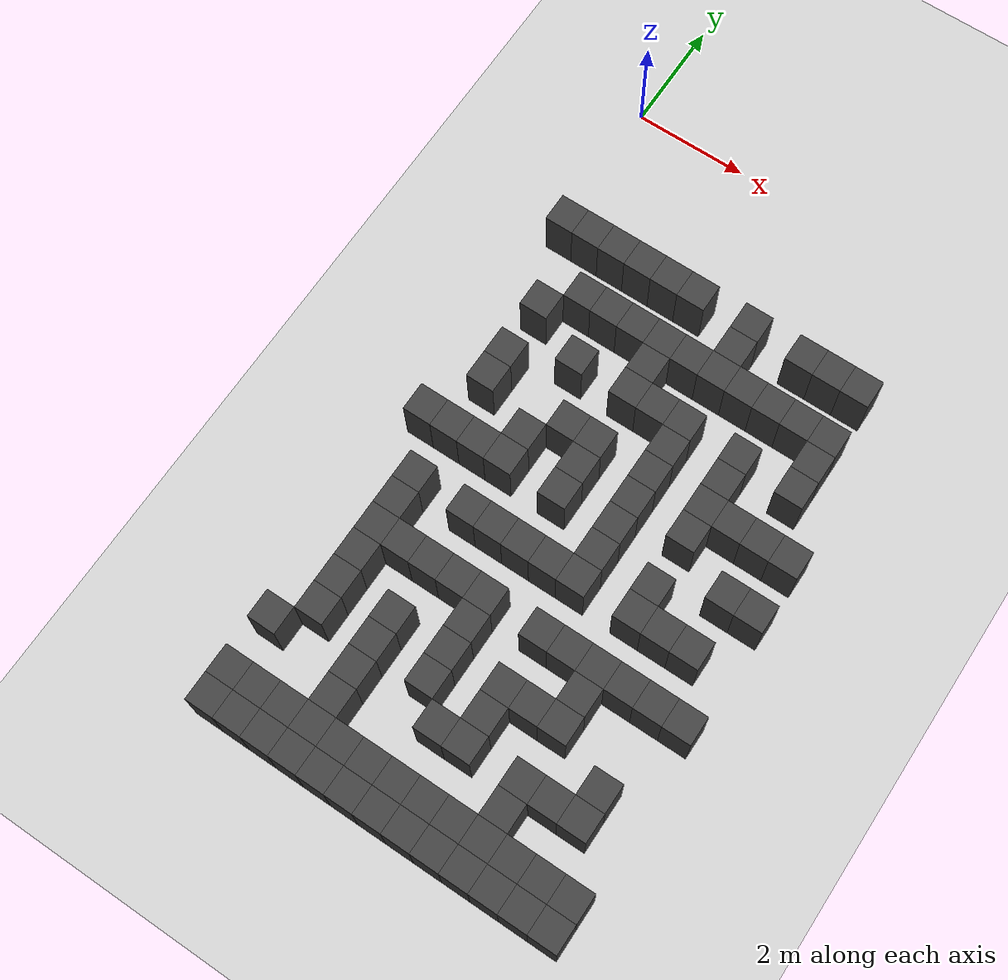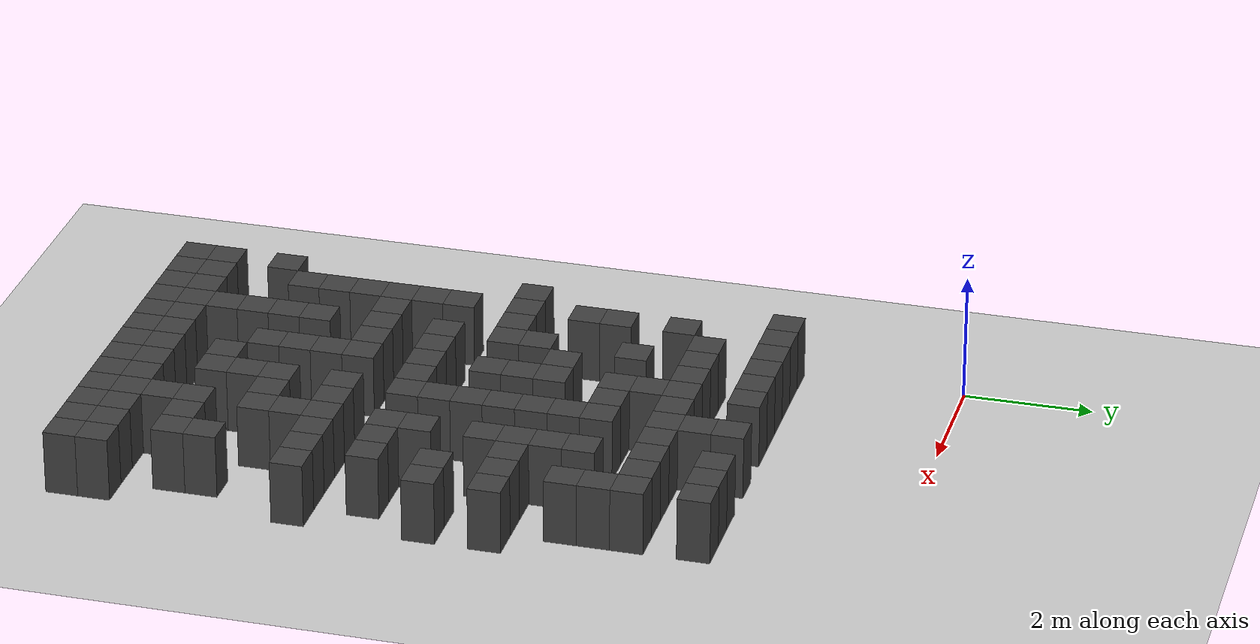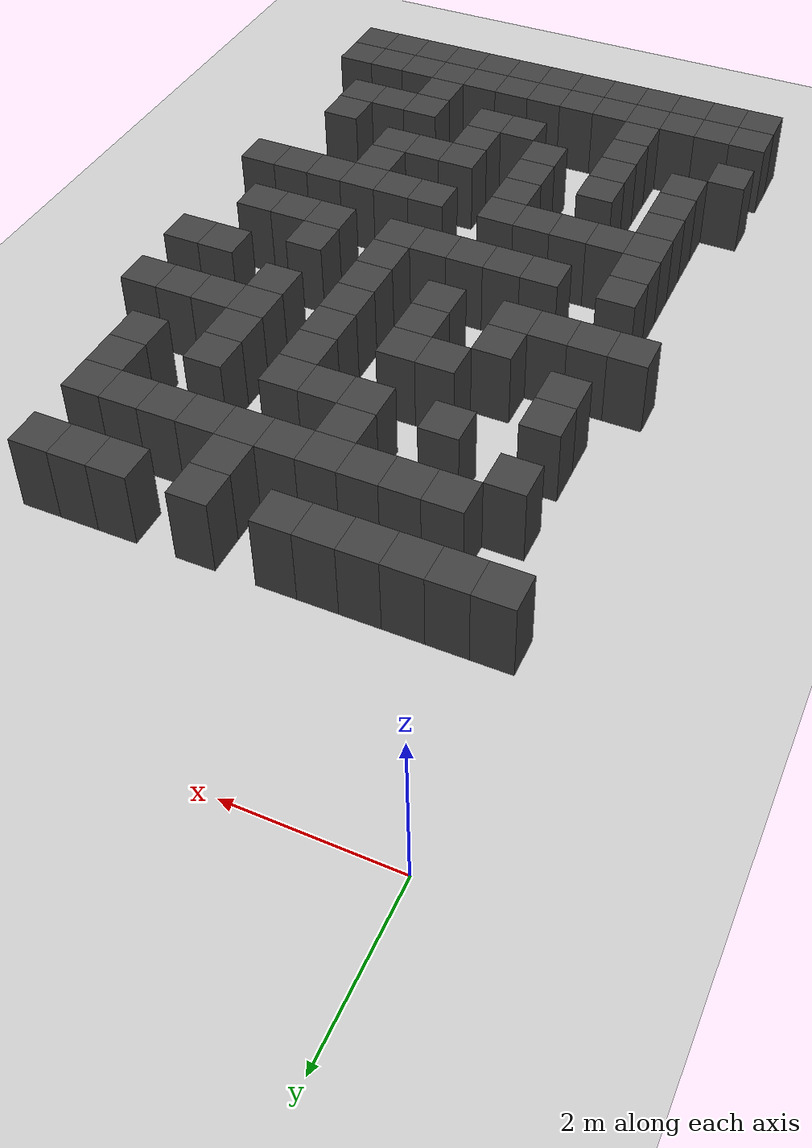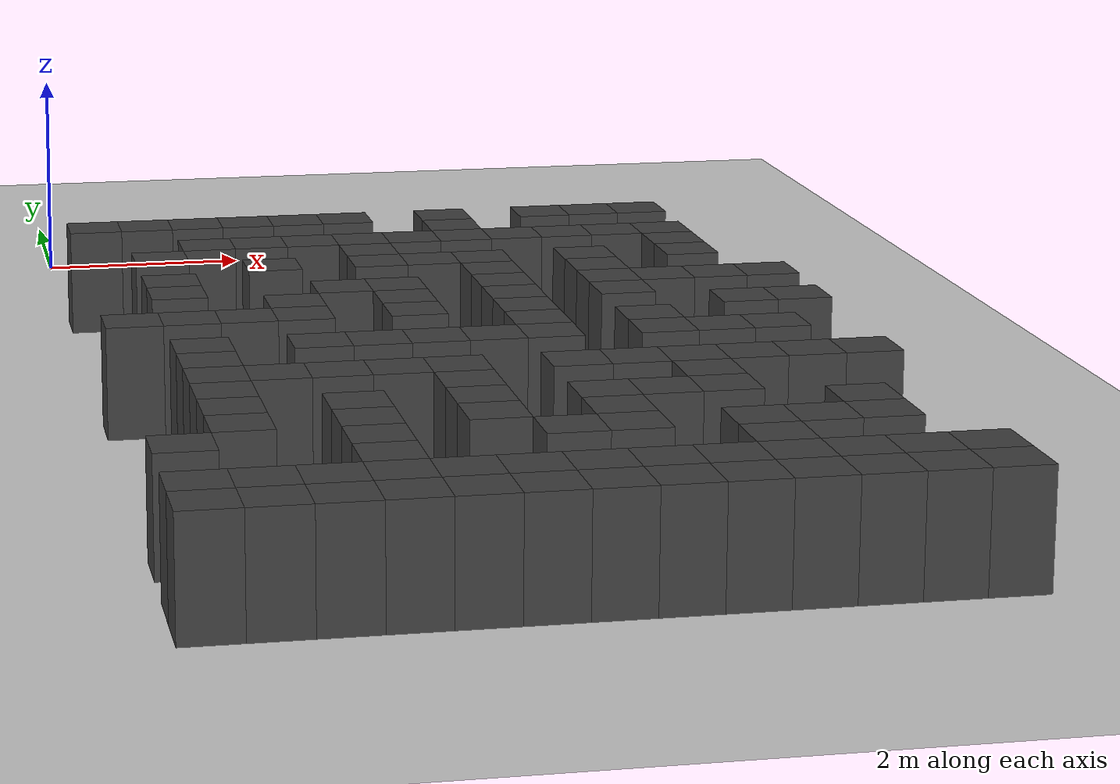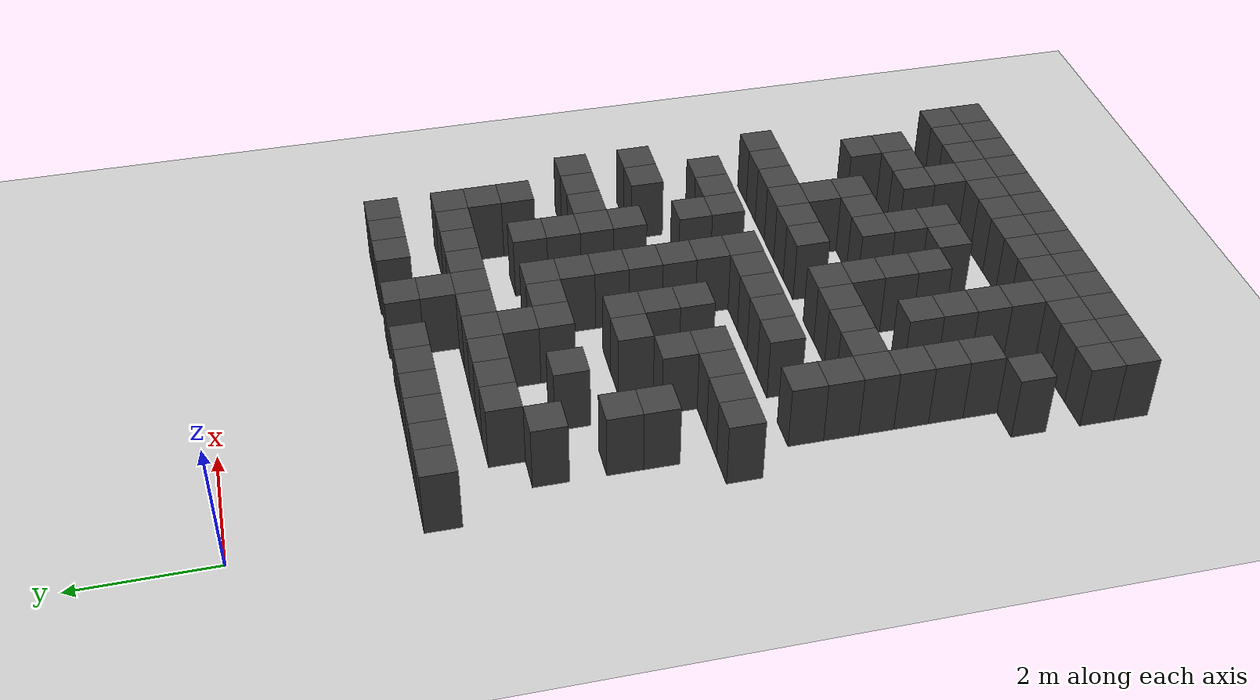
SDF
<sdf version="1.7">
 <world name="map_16603">
  <model name="ground_plane">
   <static>true</static>
   <link name="link">
    <collision name="collision">
     <geometry><plane><normal>0 0 1</normal><size>200 200</size></plane></geometry>
    </collision>
    <visual name="visual">
     <geometry><plane><normal>0 0 1</normal><size>200 200</size></plane></geometry>
     <material><ambient>0.8 0.8 0.8 1</ambient><diffuse>0.8 0.8 0.8 1</diffuse></material>
    </visual>
   </link>
  </model>
  <model name="maze_environment">
   <static>true</static>
   <link name="wall_747">
    <pose>0.250 -2.750 0.500 0 0 0</pose>
    <collision name="col"><geometry><box><size>0.5 0.5 1.0</size></box></geometry></collision>
    <visual name="vis">
     <geometry><box><size>0.5 0.5 1.0</size></box></geometry>
     <material><ambient>0.15 0.15 0.15 1</ambient><diffuse>0.25 0.25 0.25 1</diffuse></material>
    </visual>
   </link>
   <link name="wall_748">
    <pose>0.750 -2.750 0.500 0 0 0</pose>
    <collision name="col"><geometry><box><size>0.5 0.5 1.0</size></box></geometry></collision>
    <visual name="vis">
     <geometry><box><size>0.5 0.5 1.0</size></box></geometry>
     <material><ambient>0.15 0.15 0.15 1</ambient><diffuse>0.25 0.25 0.25 1</diffuse></material>
    </visual>
   </link>
   <link name="wall_749">
    <pose>1.250 -2.750 0.500 0 0 0</pose>
    <collision name="col"><geometry><box><size>0.5 0.5 1.0</size></box></geometry></collision>
    <visual name="vis">
     <geometry><box><size>0.5 0.5 1.0</size></box></geometry>
     <material><ambient>0.15 0.15 0.15 1</ambient><diffuse>0.25 0.25 0.25 1</diffuse></material>
    </visual>
   </link>
   <link name="wall_750">
    <pose>1.750 -2.750 0.500 0 0 0</pose>
    <collision name="col"><geometry><box><size>0.5 0.5 1.0</size></box></geometry></collision>
    <visual name="vis">
     <geometry><box><size>0.5 0.5 1.0</size></box></geometry>
     <material><ambient>0.15 0.15 0.15 1</ambient><diffuse>0.25 0.25 0.25 1</diffuse></material>
    </visual>
   </link>
   <link name="wall_751">
    <pose>2.250 -2.750 0.500 0 0 0</pose>
    <collision name="col"><geometry><box><size>0.5 0.5 1.0</size></box></geometry></collision>
    <visual name="vis">
     <geometry><box><size>0.5 0.5 1.0</size></box></geometry>
     <material><ambient>0.15 0.15 0.15 1</ambient><diffuse>0.25 0.25 0.25 1</diffuse></material>
    </visual>
   </link>
   <link name="wall_752">
    <pose>2.750 -2.750 0.500 0 0 0</pose>
    <collision name="col"><geometry><box><size>0.5 0.5 1.0</size></box></geometry></collision>
    <visual name="vis">
     <geometry><box><size>0.5 0.5 1.0</size></box></geometry>
     <material><ambient>0.15 0.15 0.15 1</ambient><diffuse>0.25 0.25 0.25 1</diffuse></material>
    </visual>
   </link>
   <link name="wall_753">
    <pose>3.750 -2.750 0.500 0 0 0</pose>
    <collision name="col"><geometry><box><size>0.5 0.5 1.0</size></box></geometry></collision>
    <visual name="vis">
     <geometry><box><size>0.5 0.5 1.0</size></box></geometry>
     <material><ambient>0.15 0.15 0.15 1</ambient><diffuse>0.25 0.25 0.25 1</diffuse></material>
    </visual>
   </link>
   <link name="wall_754">
    <pose>4.750 -2.750 0.500 0 0 0</pose>
    <collision name="col"><geometry><box><size>0.5 0.5 1.0</size></box></geometry></collision>
    <visual name="vis">
     <geometry><box><size>0.5 0.5 1.0</size></box></geometry>
     <material><ambient>0.15 0.15 0.15 1</ambient><diffuse>0.25 0.25 0.25 1</diffuse></material>
    </visual>
   </link>
   <link name="wall_755">
    <pose>5.250 -2.750 0.500 0 0 0</pose>
    <collision name="col"><geometry><box><size>0.5 0.5 1.0</size></box></geometry></collision>
    <visual name="vis">
     <geometry><box><size>0.5 0.5 1.0</size></box></geometry>
     <material><ambient>0.15 0.15 0.15 1</ambient><diffuse>0.25 0.25 0.25 1</diffuse></material>
    </visual>
   </link>
   <link name="wall_756">
    <pose>5.750 -2.750 0.500 0 0 0</pose>
    <collision name="col"><geometry><box><size>0.5 0.5 1.0</size></box></geometry></collision>
    <visual name="vis">
     <geometry><box><size>0.5 0.5 1.0</size></box></geometry>
     <material><ambient>0.15 0.15 0.15 1</ambient><diffuse>0.25 0.25 0.25 1</diffuse></material>
    </visual>
   </link>
   <link name="wall_773">
    <pose>3.750 -3.250 0.500 0 0 0</pose>
    <collision name="col"><geometry><box><size>0.5 0.5 1.0</size></box></geometry></collision>
    <visual name="vis">
     <geometry><box><size>0.5 0.5 1.0</size></box></geometry>
     <material><ambient>0.15 0.15 0.15 1</ambient><diffuse>0.25 0.25 0.25 1</diffuse></material>
    </visual>
   </link>
   <link name="wall_793">
    <pose>1.250 -3.750 0.500 0 0 0</pose>
    <collision name="col"><geometry><box><size>0.5 0.5 1.0</size></box></geometry></collision>
    <visual name="vis">
     <geometry><box><size>0.5 0.5 1.0</size></box></geometry>
     <material><ambient>0.15 0.15 0.15 1</ambient><diffuse>0.25 0.25 0.25 1</diffuse></material>
    </visual>
   </link>
   <link name="wall_794">
    <pose>1.750 -3.750 0.500 0 0 0</pose>
    <collision name="col"><geometry><box><size>0.5 0.5 1.0</size></box></geometry></collision>
    <visual name="vis">
     <geometry><box><size>0.5 0.5 1.0</size></box></geometry>
     <material><ambient>0.15 0.15 0.15 1</ambient><diffuse>0.25 0.25 0.25 1</diffuse></material>
    </visual>
   </link>
   <link name="wall_795">
    <pose>2.250 -3.750 0.500 0 0 0</pose>
    <collision name="col"><geometry><box><size>0.5 0.5 1.0</size></box></geometry></collision>
    <visual name="vis">
     <geometry><box><size>0.5 0.5 1.0</size></box></geometry>
     <material><ambient>0.15 0.15 0.15 1</ambient><diffuse>0.25 0.25 0.25 1</diffuse></material>
    </visual>
   </link>
   <link name="wall_796">
    <pose>2.750 -3.750 0.500 0 0 0</pose>
    <collision name="col"><geometry><box><size>0.5 0.5 1.0</size></box></geometry></collision>
    <visual name="vis">
     <geometry><box><size>0.5 0.5 1.0</size></box></geometry>
     <material><ambient>0.15 0.15 0.15 1</ambient><diffuse>0.25 0.25 0.25 1</diffuse></material>
    </visual>
   </link>
   <link name="wall_797">
    <pose>3.250 -3.750 0.500 0 0 0</pose>
    <collision name="col"><geometry><box><size>0.5 0.5 1.0</size></box></geometry></collision>
    <visual name="vis">
     <geometry><box><size>0.5 0.5 1.0</size></box></geometry>
     <material><ambient>0.15 0.15 0.15 1</ambient><diffuse>0.25 0.25 0.25 1</diffuse></material>
    </visual>
   </link>
   <link name="wall_798">
    <pose>3.750 -3.750 0.500 0 0 0</pose>
    <collision name="col"><geometry><box><size>0.5 0.5 1.0</size></box></geometry></collision>
    <visual name="vis">
     <geometry><box><size>0.5 0.5 1.0</size></box></geometry>
     <material><ambient>0.15 0.15 0.15 1</ambient><diffuse>0.25 0.25 0.25 1</diffuse></material>
    </visual>
   </link>
   <link name="wall_799">
    <pose>4.250 -3.750 0.500 0 0 0</pose>
    <collision name="col"><geometry><box><size>0.5 0.5 1.0</size></box></geometry></collision>
    <visual name="vis">
     <geometry><box><size>0.5 0.5 1.0</size></box></geometry>
     <material><ambient>0.15 0.15 0.15 1</ambient><diffuse>0.25 0.25 0.25 1</diffuse></material>
    </visual>
   </link>
   <link name="wall_800">
    <pose>4.750 -3.750 0.500 0 0 0</pose>
    <collision name="col"><geometry><box><size>0.5 0.5 1.0</size></box></geometry></collision>
    <visual name="vis">
     <geometry><box><size>0.5 0.5 1.0</size></box></geometry>
     <material><ambient>0.15 0.15 0.15 1</ambient><diffuse>0.25 0.25 0.25 1</diffuse></material>
    </visual>
   </link>
   <link name="wall_801">
    <pose>5.250 -3.750 0.500 0 0 0</pose>
    <collision name="col"><geometry><box><size>0.5 0.5 1.0</size></box></geometry></collision>
    <visual name="vis">
     <geometry><box><size>0.5 0.5 1.0</size></box></geometry>
     <material><ambient>0.15 0.15 0.15 1</ambient><diffuse>0.25 0.25 0.25 1</diffuse></material>
    </visual>
   </link>
   <link name="wall_802">
    <pose>5.750 -3.750 0.500 0 0 0</pose>
    <collision name="col"><geometry><box><size>0.5 0.5 1.0</size></box></geometry></collision>
    <visual name="vis">
     <geometry><box><size>0.5 0.5 1.0</size></box></geometry>
     <material><ambient>0.15 0.15 0.15 1</ambient><diffuse>0.25 0.25 0.25 1</diffuse></material>
    </visual>
   </link>
   <link name="wall_818">
    <pose>0.750 -4.250 0.500 0 0 0</pose>
    <collision name="col"><geometry><box><size>0.5 0.5 1.0</size></box></geometry></collision>
    <visual name="vis">
     <geometry><box><size>0.5 0.5 1.0</size></box></geometry>
     <material><ambient>0.15 0.15 0.15 1</ambient><diffuse>0.25 0.25 0.25 1</diffuse></material>
    </visual>
   </link>
   <link name="wall_819">
    <pose>2.750 -4.250 0.500 0 0 0</pose>
    <collision name="col"><geometry><box><size>0.5 0.5 1.0</size></box></geometry></collision>
    <visual name="vis">
     <geometry><box><size>0.5 0.5 1.0</size></box></geometry>
     <material><ambient>0.15 0.15 0.15 1</ambient><diffuse>0.25 0.25 0.25 1</diffuse></material>
    </visual>
   </link>
   <link name="wall_820">
    <pose>5.750 -4.250 0.500 0 0 0</pose>
    <collision name="col"><geometry><box><size>0.5 0.5 1.0</size></box></geometry></collision>
    <visual name="vis">
     <geometry><box><size>0.5 0.5 1.0</size></box></geometry>
     <material><ambient>0.15 0.15 0.15 1</ambient><diffuse>0.25 0.25 0.25 1</diffuse></material>
    </visual>
   </link>
   <link name="wall_842">
    <pose>1.750 -4.750 0.500 0 0 0</pose>
    <collision name="col"><geometry><box><size>0.5 0.5 1.0</size></box></geometry></collision>
    <visual name="vis">
     <geometry><box><size>0.5 0.5 1.0</size></box></geometry>
     <material><ambient>0.15 0.15 0.15 1</ambient><diffuse>0.25 0.25 0.25 1</diffuse></material>
    </visual>
   </link>
   <link name="wall_843">
    <pose>2.750 -4.750 0.500 0 0 0</pose>
    <collision name="col"><geometry><box><size>0.5 0.5 1.0</size></box></geometry></collision>
    <visual name="vis">
     <geometry><box><size>0.5 0.5 1.0</size></box></geometry>
     <material><ambient>0.15 0.15 0.15 1</ambient><diffuse>0.25 0.25 0.25 1</diffuse></material>
    </visual>
   </link>
   <link name="wall_844">
    <pose>3.250 -4.750 0.500 0 0 0</pose>
    <collision name="col"><geometry><box><size>0.5 0.5 1.0</size></box></geometry></collision>
    <visual name="vis">
     <geometry><box><size>0.5 0.5 1.0</size></box></geometry>
     <material><ambient>0.15 0.15 0.15 1</ambient><diffuse>0.25 0.25 0.25 1</diffuse></material>
    </visual>
   </link>
   <link name="wall_845">
    <pose>3.750 -4.750 0.500 0 0 0</pose>
    <collision name="col"><geometry><box><size>0.5 0.5 1.0</size></box></geometry></collision>
    <visual name="vis">
     <geometry><box><size>0.5 0.5 1.0</size></box></geometry>
     <material><ambient>0.15 0.15 0.15 1</ambient><diffuse>0.25 0.25 0.25 1</diffuse></material>
    </visual>
   </link>
   <link name="wall_846">
    <pose>4.750 -4.750 0.500 0 0 0</pose>
    <collision name="col"><geometry><box><size>0.5 0.5 1.0</size></box></geometry></collision>
    <visual name="vis">
     <geometry><box><size>0.5 0.5 1.0</size></box></geometry>
     <material><ambient>0.15 0.15 0.15 1</ambient><diffuse>0.25 0.25 0.25 1</diffuse></material>
    </visual>
   </link>
   <link name="wall_847">
    <pose>5.750 -4.750 0.500 0 0 0</pose>
    <collision name="col"><geometry><box><size>0.5 0.5 1.0</size></box></geometry></collision>
    <visual name="vis">
     <geometry><box><size>0.5 0.5 1.0</size></box></geometry>
     <material><ambient>0.15 0.15 0.15 1</ambient><diffuse>0.25 0.25 0.25 1</diffuse></material>
    </visual>
   </link>
   <link name="wall_865">
    <pose>0.750 -5.250 0.500 0 0 0</pose>
    <collision name="col"><geometry><box><size>0.5 0.5 1.0</size></box></geometry></collision>
    <visual name="vis">
     <geometry><box><size>0.5 0.5 1.0</size></box></geometry>
     <material><ambient>0.15 0.15 0.15 1</ambient><diffuse>0.25 0.25 0.25 1</diffuse></material>
    </visual>
   </link>
   <link name="wall_866">
    <pose>3.750 -5.250 0.500 0 0 0</pose>
    <collision name="col"><geometry><box><size>0.5 0.5 1.0</size></box></geometry></collision>
    <visual name="vis">
     <geometry><box><size>0.5 0.5 1.0</size></box></geometry>
     <material><ambient>0.15 0.15 0.15 1</ambient><diffuse>0.25 0.25 0.25 1</diffuse></material>
    </visual>
   </link>
   <link name="wall_867">
    <pose>4.750 -5.250 0.500 0 0 0</pose>
    <collision name="col"><geometry><box><size>0.5 0.5 1.0</size></box></geometry></collision>
    <visual name="vis">
     <geometry><box><size>0.5 0.5 1.0</size></box></geometry>
     <material><ambient>0.15 0.15 0.15 1</ambient><diffuse>0.25 0.25 0.25 1</diffuse></material>
    </visual>
   </link>
   <link name="wall_889">
    <pose>0.750 -5.750 0.500 0 0 0</pose>
    <collision name="col"><geometry><box><size>0.5 0.5 1.0</size></box></geometry></collision>
    <visual name="vis">
     <geometry><box><size>0.5 0.5 1.0</size></box></geometry>
     <material><ambient>0.15 0.15 0.15 1</ambient><diffuse>0.25 0.25 0.25 1</diffuse></material>
    </visual>
   </link>
   <link name="wall_890">
    <pose>2.250 -5.750 0.500 0 0 0</pose>
    <collision name="col"><geometry><box><size>0.5 0.5 1.0</size></box></geometry></collision>
    <visual name="vis">
     <geometry><box><size>0.5 0.5 1.0</size></box></geometry>
     <material><ambient>0.15 0.15 0.15 1</ambient><diffuse>0.25 0.25 0.25 1</diffuse></material>
    </visual>
   </link>
   <link name="wall_891">
    <pose>2.750 -5.750 0.500 0 0 0</pose>
    <collision name="col"><geometry><box><size>0.5 0.5 1.0</size></box></geometry></collision>
    <visual name="vis">
     <geometry><box><size>0.5 0.5 1.0</size></box></geometry>
     <material><ambient>0.15 0.15 0.15 1</ambient><diffuse>0.25 0.25 0.25 1</diffuse></material>
    </visual>
   </link>
   <link name="wall_892">
    <pose>3.750 -5.750 0.500 0 0 0</pose>
    <collision name="col"><geometry><box><size>0.5 0.5 1.0</size></box></geometry></collision>
    <visual name="vis">
     <geometry><box><size>0.5 0.5 1.0</size></box></geometry>
     <material><ambient>0.15 0.15 0.15 1</ambient><diffuse>0.25 0.25 0.25 1</diffuse></material>
    </visual>
   </link>
   <link name="wall_893">
    <pose>4.750 -5.750 0.500 0 0 0</pose>
    <collision name="col"><geometry><box><size>0.5 0.5 1.0</size></box></geometry></collision>
    <visual name="vis">
     <geometry><box><size>0.5 0.5 1.0</size></box></geometry>
     <material><ambient>0.15 0.15 0.15 1</ambient><diffuse>0.25 0.25 0.25 1</diffuse></material>
    </visual>
   </link>
   <link name="wall_894">
    <pose>5.250 -5.750 0.500 0 0 0</pose>
    <collision name="col"><geometry><box><size>0.5 0.5 1.0</size></box></geometry></collision>
    <visual name="vis">
     <geometry><box><size>0.5 0.5 1.0</size></box></geometry>
     <material><ambient>0.15 0.15 0.15 1</ambient><diffuse>0.25 0.25 0.25 1</diffuse></material>
    </visual>
   </link>
   <link name="wall_895">
    <pose>5.750 -5.750 0.500 0 0 0</pose>
    <collision name="col"><geometry><box><size>0.5 0.5 1.0</size></box></geometry></collision>
    <visual name="vis">
     <geometry><box><size>0.5 0.5 1.0</size></box></geometry>
     <material><ambient>0.15 0.15 0.15 1</ambient><diffuse>0.25 0.25 0.25 1</diffuse></material>
    </visual>
   </link>
   <link name="wall_896">
    <pose>6.250 -5.750 0.500 0 0 0</pose>
    <collision name="col"><geometry><box><size>0.5 0.5 1.0</size></box></geometry></collision>
    <visual name="vis">
     <geometry><box><size>0.5 0.5 1.0</size></box></geometry>
     <material><ambient>0.15 0.15 0.15 1</ambient><diffuse>0.25 0.25 0.25 1</diffuse></material>
    </visual>
   </link>
   <link name="wall_913">
    <pose>1.750 -6.250 0.500 0 0 0</pose>
    <collision name="col"><geometry><box><size>0.5 0.5 1.0</size></box></geometry></collision>
    <visual name="vis">
     <geometry><box><size>0.5 0.5 1.0</size></box></geometry>
     <material><ambient>0.15 0.15 0.15 1</ambient><diffuse>0.25 0.25 0.25 1</diffuse></material>
    </visual>
   </link>
   <link name="wall_914">
    <pose>2.750 -6.250 0.500 0 0 0</pose>
    <collision name="col"><geometry><box><size>0.5 0.5 1.0</size></box></geometry></collision>
    <visual name="vis">
     <geometry><box><size>0.5 0.5 1.0</size></box></geometry>
     <material><ambient>0.15 0.15 0.15 1</ambient><diffuse>0.25 0.25 0.25 1</diffuse></material>
    </visual>
   </link>
   <link name="wall_915">
    <pose>3.750 -6.250 0.500 0 0 0</pose>
    <collision name="col"><geometry><box><size>0.5 0.5 1.0</size></box></geometry></collision>
    <visual name="vis">
     <geometry><box><size>0.5 0.5 1.0</size></box></geometry>
     <material><ambient>0.15 0.15 0.15 1</ambient><diffuse>0.25 0.25 0.25 1</diffuse></material>
    </visual>
   </link>
   <link name="wall_916">
    <pose>4.750 -6.250 0.500 0 0 0</pose>
    <collision name="col"><geometry><box><size>0.5 0.5 1.0</size></box></geometry></collision>
    <visual name="vis">
     <geometry><box><size>0.5 0.5 1.0</size></box></geometry>
     <material><ambient>0.15 0.15 0.15 1</ambient><diffuse>0.25 0.25 0.25 1</diffuse></material>
    </visual>
   </link>
   <link name="wall_941">
    <pose>0.250 -6.750 0.500 0 0 0</pose>
    <collision name="col"><geometry><box><size>0.5 0.5 1.0</size></box></geometry></collision>
    <visual name="vis">
     <geometry><box><size>0.5 0.5 1.0</size></box></geometry>
     <material><ambient>0.15 0.15 0.15 1</ambient><diffuse>0.25 0.25 0.25 1</diffuse></material>
    </visual>
   </link>
   <link name="wall_942">
    <pose>0.750 -6.750 0.500 0 0 0</pose>
    <collision name="col"><geometry><box><size>0.5 0.5 1.0</size></box></geometry></collision>
    <visual name="vis">
     <geometry><box><size>0.5 0.5 1.0</size></box></geometry>
     <material><ambient>0.15 0.15 0.15 1</ambient><diffuse>0.25 0.25 0.25 1</diffuse></material>
    </visual>
   </link>
   <link name="wall_943">
    <pose>1.250 -6.750 0.500 0 0 0</pose>
    <collision name="col"><geometry><box><size>0.5 0.5 1.0</size></box></geometry></collision>
    <visual name="vis">
     <geometry><box><size>0.5 0.5 1.0</size></box></geometry>
     <material><ambient>0.15 0.15 0.15 1</ambient><diffuse>0.25 0.25 0.25 1</diffuse></material>
    </visual>
   </link>
   <link name="wall_944">
    <pose>1.750 -6.750 0.500 0 0 0</pose>
    <collision name="col"><geometry><box><size>0.5 0.5 1.0</size></box></geometry></collision>
    <visual name="vis">
     <geometry><box><size>0.5 0.5 1.0</size></box></geometry>
     <material><ambient>0.15 0.15 0.15 1</ambient><diffuse>0.25 0.25 0.25 1</diffuse></material>
    </visual>
   </link>
   <link name="wall_945">
    <pose>2.750 -6.750 0.500 0 0 0</pose>
    <collision name="col"><geometry><box><size>0.5 0.5 1.0</size></box></geometry></collision>
    <visual name="vis">
     <geometry><box><size>0.5 0.5 1.0</size></box></geometry>
     <material><ambient>0.15 0.15 0.15 1</ambient><diffuse>0.25 0.25 0.25 1</diffuse></material>
    </visual>
   </link>
   <link name="wall_946">
    <pose>3.750 -6.750 0.500 0 0 0</pose>
    <collision name="col"><geometry><box><size>0.5 0.5 1.0</size></box></geometry></collision>
    <visual name="vis">
     <geometry><box><size>0.5 0.5 1.0</size></box></geometry>
     <material><ambient>0.15 0.15 0.15 1</ambient><diffuse>0.25 0.25 0.25 1</diffuse></material>
    </visual>
   </link>
   <link name="wall_947">
    <pose>5.750 -6.750 0.500 0 0 0</pose>
    <collision name="col"><geometry><box><size>0.5 0.5 1.0</size></box></geometry></collision>
    <visual name="vis">
     <geometry><box><size>0.5 0.5 1.0</size></box></geometry>
     <material><ambient>0.15 0.15 0.15 1</ambient><diffuse>0.25 0.25 0.25 1</diffuse></material>
    </visual>
   </link>
   <link name="wall_948">
    <pose>6.250 -6.750 0.500 0 0 0</pose>
    <collision name="col"><geometry><box><size>0.5 0.5 1.0</size></box></geometry></collision>
    <visual name="vis">
     <geometry><box><size>0.5 0.5 1.0</size></box></geometry>
     <material><ambient>0.15 0.15 0.15 1</ambient><diffuse>0.25 0.25 0.25 1</diffuse></material>
    </visual>
   </link>
   <link name="wall_963">
    <pose>3.750 -7.250 0.500 0 0 0</pose>
    <collision name="col"><geometry><box><size>0.5 0.5 1.0</size></box></geometry></collision>
    <visual name="vis">
     <geometry><box><size>0.5 0.5 1.0</size></box></geometry>
     <material><ambient>0.15 0.15 0.15 1</ambient><diffuse>0.25 0.25 0.25 1</diffuse></material>
    </visual>
   </link>
   <link name="wall_964">
    <pose>4.750 -7.250 0.500 0 0 0</pose>
    <collision name="col"><geometry><box><size>0.5 0.5 1.0</size></box></geometry></collision>
    <visual name="vis">
     <geometry><box><size>0.5 0.5 1.0</size></box></geometry>
     <material><ambient>0.15 0.15 0.15 1</ambient><diffuse>0.25 0.25 0.25 1</diffuse></material>
    </visual>
   </link>
   <link name="wall_984">
    <pose>0.750 -7.750 0.500 0 0 0</pose>
    <collision name="col"><geometry><box><size>0.5 0.5 1.0</size></box></geometry></collision>
    <visual name="vis">
     <geometry><box><size>0.5 0.5 1.0</size></box></geometry>
     <material><ambient>0.15 0.15 0.15 1</ambient><diffuse>0.25 0.25 0.25 1</diffuse></material>
    </visual>
   </link>
   <link name="wall_985">
    <pose>1.750 -7.750 0.500 0 0 0</pose>
    <collision name="col"><geometry><box><size>0.5 0.5 1.0</size></box></geometry></collision>
    <visual name="vis">
     <geometry><box><size>0.5 0.5 1.0</size></box></geometry>
     <material><ambient>0.15 0.15 0.15 1</ambient><diffuse>0.25 0.25 0.25 1</diffuse></material>
    </visual>
   </link>
   <link name="wall_986">
    <pose>2.250 -7.750 0.500 0 0 0</pose>
    <collision name="col"><geometry><box><size>0.5 0.5 1.0</size></box></geometry></collision>
    <visual name="vis">
     <geometry><box><size>0.5 0.5 1.0</size></box></geometry>
     <material><ambient>0.15 0.15 0.15 1</ambient><diffuse>0.25 0.25 0.25 1</diffuse></material>
    </visual>
   </link>
   <link name="wall_987">
    <pose>2.750 -7.750 0.500 0 0 0</pose>
    <collision name="col"><geometry><box><size>0.5 0.5 1.0</size></box></geometry></collision>
    <visual name="vis">
     <geometry><box><size>0.5 0.5 1.0</size></box></geometry>
     <material><ambient>0.15 0.15 0.15 1</ambient><diffuse>0.25 0.25 0.25 1</diffuse></material>
    </visual>
   </link>
   <link name="wall_988">
    <pose>3.250 -7.750 0.500 0 0 0</pose>
    <collision name="col"><geometry><box><size>0.5 0.5 1.0</size></box></geometry></collision>
    <visual name="vis">
     <geometry><box><size>0.5 0.5 1.0</size></box></geometry>
     <material><ambient>0.15 0.15 0.15 1</ambient><diffuse>0.25 0.25 0.25 1</diffuse></material>
    </visual>
   </link>
   <link name="wall_989">
    <pose>3.750 -7.750 0.500 0 0 0</pose>
    <collision name="col"><geometry><box><size>0.5 0.5 1.0</size></box></geometry></collision>
    <visual name="vis">
     <geometry><box><size>0.5 0.5 1.0</size></box></geometry>
     <material><ambient>0.15 0.15 0.15 1</ambient><diffuse>0.25 0.25 0.25 1</diffuse></material>
    </visual>
   </link>
   <link name="wall_990">
    <pose>4.750 -7.750 0.500 0 0 0</pose>
    <collision name="col"><geometry><box><size>0.5 0.5 1.0</size></box></geometry></collision>
    <visual name="vis">
     <geometry><box><size>0.5 0.5 1.0</size></box></geometry>
     <material><ambient>0.15 0.15 0.15 1</ambient><diffuse>0.25 0.25 0.25 1</diffuse></material>
    </visual>
   </link>
   <link name="wall_991">
    <pose>5.250 -7.750 0.500 0 0 0</pose>
    <collision name="col"><geometry><box><size>0.5 0.5 1.0</size></box></geometry></collision>
    <visual name="vis">
     <geometry><box><size>0.5 0.5 1.0</size></box></geometry>
     <material><ambient>0.15 0.15 0.15 1</ambient><diffuse>0.25 0.25 0.25 1</diffuse></material>
    </visual>
   </link>
   <link name="wall_992">
    <pose>5.750 -7.750 0.500 0 0 0</pose>
    <collision name="col"><geometry><box><size>0.5 0.5 1.0</size></box></geometry></collision>
    <visual name="vis">
     <geometry><box><size>0.5 0.5 1.0</size></box></geometry>
     <material><ambient>0.15 0.15 0.15 1</ambient><diffuse>0.25 0.25 0.25 1</diffuse></material>
    </visual>
   </link>
   <link name="wall_1008">
    <pose>0.750 -8.250 0.500 0 0 0</pose>
    <collision name="col"><geometry><box><size>0.5 0.5 1.0</size></box></geometry></collision>
    <visual name="vis">
     <geometry><box><size>0.5 0.5 1.0</size></box></geometry>
     <material><ambient>0.15 0.15 0.15 1</ambient><diffuse>0.25 0.25 0.25 1</diffuse></material>
    </visual>
   </link>
   <link name="wall_1028">
    <pose>0.750 -8.750 0.500 0 0 0</pose>
    <collision name="col"><geometry><box><size>0.5 0.5 1.0</size></box></geometry></collision>
    <visual name="vis">
     <geometry><box><size>0.5 0.5 1.0</size></box></geometry>
     <material><ambient>0.15 0.15 0.15 1</ambient><diffuse>0.25 0.25 0.25 1</diffuse></material>
    </visual>
   </link>
   <link name="wall_1029">
    <pose>1.250 -8.750 0.500 0 0 0</pose>
    <collision name="col"><geometry><box><size>0.5 0.5 1.0</size></box></geometry></collision>
    <visual name="vis">
     <geometry><box><size>0.5 0.5 1.0</size></box></geometry>
     <material><ambient>0.15 0.15 0.15 1</ambient><diffuse>0.25 0.25 0.25 1</diffuse></material>
    </visual>
   </link>
   <link name="wall_1030">
    <pose>1.750 -8.750 0.500 0 0 0</pose>
    <collision name="col"><geometry><box><size>0.5 0.5 1.0</size></box></geometry></collision>
    <visual name="vis">
     <geometry><box><size>0.5 0.5 1.0</size></box></geometry>
     <material><ambient>0.15 0.15 0.15 1</ambient><diffuse>0.25 0.25 0.25 1</diffuse></material>
    </visual>
   </link>
   <link name="wall_1031">
    <pose>2.250 -8.750 0.500 0 0 0</pose>
    <collision name="col"><geometry><box><size>0.5 0.5 1.0</size></box></geometry></collision>
    <visual name="vis">
     <geometry><box><size>0.5 0.5 1.0</size></box></geometry>
     <material><ambient>0.15 0.15 0.15 1</ambient><diffuse>0.25 0.25 0.25 1</diffuse></material>
    </visual>
   </link>
   <link name="wall_1032">
    <pose>2.750 -8.750 0.500 0 0 0</pose>
    <collision name="col"><geometry><box><size>0.5 0.5 1.0</size></box></geometry></collision>
    <visual name="vis">
     <geometry><box><size>0.5 0.5 1.0</size></box></geometry>
     <material><ambient>0.15 0.15 0.15 1</ambient><diffuse>0.25 0.25 0.25 1</diffuse></material>
    </visual>
   </link>
   <link name="wall_1033">
    <pose>3.750 -8.750 0.500 0 0 0</pose>
    <collision name="col"><geometry><box><size>0.5 0.5 1.0</size></box></geometry></collision>
    <visual name="vis">
     <geometry><box><size>0.5 0.5 1.0</size></box></geometry>
     <material><ambient>0.15 0.15 0.15 1</ambient><diffuse>0.25 0.25 0.25 1</diffuse></material>
    </visual>
   </link>
   <link name="wall_1034">
    <pose>4.250 -8.750 0.500 0 0 0</pose>
    <collision name="col"><geometry><box><size>0.5 0.5 1.0</size></box></geometry></collision>
    <visual name="vis">
     <geometry><box><size>0.5 0.5 1.0</size></box></geometry>
     <material><ambient>0.15 0.15 0.15 1</ambient><diffuse>0.25 0.25 0.25 1</diffuse></material>
    </visual>
   </link>
   <link name="wall_1035">
    <pose>4.750 -8.750 0.500 0 0 0</pose>
    <collision name="col"><geometry><box><size>0.5 0.5 1.0</size></box></geometry></collision>
    <visual name="vis">
     <geometry><box><size>0.5 0.5 1.0</size></box></geometry>
     <material><ambient>0.15 0.15 0.15 1</ambient><diffuse>0.25 0.25 0.25 1</diffuse></material>
    </visual>
   </link>
   <link name="wall_1036">
    <pose>5.250 -8.750 0.500 0 0 0</pose>
    <collision name="col"><geometry><box><size>0.5 0.5 1.0</size></box></geometry></collision>
    <visual name="vis">
     <geometry><box><size>0.5 0.5 1.0</size></box></geometry>
     <material><ambient>0.15 0.15 0.15 1</ambient><diffuse>0.25 0.25 0.25 1</diffuse></material>
    </visual>
   </link>
   <link name="wall_1037">
    <pose>5.750 -8.750 0.500 0 0 0</pose>
    <collision name="col"><geometry><box><size>0.5 0.5 1.0</size></box></geometry></collision>
    <visual name="vis">
     <geometry><box><size>0.5 0.5 1.0</size></box></geometry>
     <material><ambient>0.15 0.15 0.15 1</ambient><diffuse>0.25 0.25 0.25 1</diffuse></material>
    </visual>
   </link>
   <link name="wall_1038">
    <pose>6.250 -8.750 0.500 0 0 0</pose>
    <collision name="col"><geometry><box><size>0.5 0.5 1.0</size></box></geometry></collision>
    <visual name="vis">
     <geometry><box><size>0.5 0.5 1.0</size></box></geometry>
     <material><ambient>0.15 0.15 0.15 1</ambient><diffuse>0.25 0.25 0.25 1</diffuse></material>
    </visual>
   </link>
   <link name="wall_1055">
    <pose>0.750 -9.250 0.500 0 0 0</pose>
    <collision name="col"><geometry><box><size>0.5 0.5 1.0</size></box></geometry></collision>
    <visual name="vis">
     <geometry><box><size>0.5 0.5 1.0</size></box></geometry>
     <material><ambient>0.15 0.15 0.15 1</ambient><diffuse>0.25 0.25 0.25 1</diffuse></material>
    </visual>
   </link>
   <link name="wall_1056">
    <pose>2.750 -9.250 0.500 0 0 0</pose>
    <collision name="col"><geometry><box><size>0.5 0.5 1.0</size></box></geometry></collision>
    <visual name="vis">
     <geometry><box><size>0.5 0.5 1.0</size></box></geometry>
     <material><ambient>0.15 0.15 0.15 1</ambient><diffuse>0.25 0.25 0.25 1</diffuse></material>
    </visual>
   </link>
   <link name="wall_1057">
    <pose>4.750 -9.250 0.500 0 0 0</pose>
    <collision name="col"><geometry><box><size>0.5 0.5 1.0</size></box></geometry></collision>
    <visual name="vis">
     <geometry><box><size>0.5 0.5 1.0</size></box></geometry>
     <material><ambient>0.15 0.15 0.15 1</ambient><diffuse>0.25 0.25 0.25 1</diffuse></material>
    </visual>
   </link>
   <link name="wall_1079">
    <pose>0.750 -9.750 0.500 0 0 0</pose>
    <collision name="col"><geometry><box><size>0.5 0.5 1.0</size></box></geometry></collision>
    <visual name="vis">
     <geometry><box><size>0.5 0.5 1.0</size></box></geometry>
     <material><ambient>0.15 0.15 0.15 1</ambient><diffuse>0.25 0.25 0.25 1</diffuse></material>
    </visual>
   </link>
   <link name="wall_1080">
    <pose>1.750 -9.750 0.500 0 0 0</pose>
    <collision name="col"><geometry><box><size>0.5 0.5 1.0</size></box></geometry></collision>
    <visual name="vis">
     <geometry><box><size>0.5 0.5 1.0</size></box></geometry>
     <material><ambient>0.15 0.15 0.15 1</ambient><diffuse>0.25 0.25 0.25 1</diffuse></material>
    </visual>
   </link>
   <link name="wall_1081">
    <pose>2.750 -9.750 0.500 0 0 0</pose>
    <collision name="col"><geometry><box><size>0.5 0.5 1.0</size></box></geometry></collision>
    <visual name="vis">
     <geometry><box><size>0.5 0.5 1.0</size></box></geometry>
     <material><ambient>0.15 0.15 0.15 1</ambient><diffuse>0.25 0.25 0.25 1</diffuse></material>
    </visual>
   </link>
   <link name="wall_1082">
    <pose>3.750 -9.750 0.500 0 0 0</pose>
    <collision name="col"><geometry><box><size>0.5 0.5 1.0</size></box></geometry></collision>
    <visual name="vis">
     <geometry><box><size>0.5 0.5 1.0</size></box></geometry>
     <material><ambient>0.15 0.15 0.15 1</ambient><diffuse>0.25 0.25 0.25 1</diffuse></material>
    </visual>
   </link>
   <link name="wall_1083">
    <pose>4.250 -9.750 0.500 0 0 0</pose>
    <collision name="col"><geometry><box><size>0.5 0.5 1.0</size></box></geometry></collision>
    <visual name="vis">
     <geometry><box><size>0.5 0.5 1.0</size></box></geometry>
     <material><ambient>0.15 0.15 0.15 1</ambient><diffuse>0.25 0.25 0.25 1</diffuse></material>
    </visual>
   </link>
   <link name="wall_1084">
    <pose>4.750 -9.750 0.500 0 0 0</pose>
    <collision name="col"><geometry><box><size>0.5 0.5 1.0</size></box></geometry></collision>
    <visual name="vis">
     <geometry><box><size>0.5 0.5 1.0</size></box></geometry>
     <material><ambient>0.15 0.15 0.15 1</ambient><diffuse>0.25 0.25 0.25 1</diffuse></material>
    </visual>
   </link>
   <link name="wall_1098">
    <pose>0.750 -10.250 0.500 0 0 0</pose>
    <collision name="col"><geometry><box><size>0.5 0.5 1.0</size></box></geometry></collision>
    <visual name="vis">
     <geometry><box><size>0.5 0.5 1.0</size></box></geometry>
     <material><ambient>0.15 0.15 0.15 1</ambient><diffuse>0.25 0.25 0.25 1</diffuse></material>
    </visual>
   </link>
   <link name="wall_1099">
    <pose>1.750 -10.250 0.500 0 0 0</pose>
    <collision name="col"><geometry><box><size>0.5 0.5 1.0</size></box></geometry></collision>
    <visual name="vis">
     <geometry><box><size>0.5 0.5 1.0</size></box></geometry>
     <material><ambient>0.15 0.15 0.15 1</ambient><diffuse>0.25 0.25 0.25 1</diffuse></material>
    </visual>
   </link>
   <link name="wall_1100">
    <pose>2.750 -10.250 0.500 0 0 0</pose>
    <collision name="col"><geometry><box><size>0.5 0.5 1.0</size></box></geometry></collision>
    <visual name="vis">
     <geometry><box><size>0.5 0.5 1.0</size></box></geometry>
     <material><ambient>0.15 0.15 0.15 1</ambient><diffuse>0.25 0.25 0.25 1</diffuse></material>
    </visual>
   </link>
   <link name="wall_1101">
    <pose>3.750 -10.250 0.500 0 0 0</pose>
    <collision name="col"><geometry><box><size>0.5 0.5 1.0</size></box></geometry></collision>
    <visual name="vis">
     <geometry><box><size>0.5 0.5 1.0</size></box></geometry>
     <material><ambient>0.15 0.15 0.15 1</ambient><diffuse>0.25 0.25 0.25 1</diffuse></material>
    </visual>
   </link>
   <link name="wall_1102">
    <pose>5.750 -10.250 0.500 0 0 0</pose>
    <collision name="col"><geometry><box><size>0.5 0.5 1.0</size></box></geometry></collision>
    <visual name="vis">
     <geometry><box><size>0.5 0.5 1.0</size></box></geometry>
     <material><ambient>0.15 0.15 0.15 1</ambient><diffuse>0.25 0.25 0.25 1</diffuse></material>
    </visual>
   </link>
   <link name="wall_1122">
    <pose>0.250 -10.750 0.500 0 0 0</pose>
    <collision name="col"><geometry><box><size>0.5 0.5 1.0</size></box></geometry></collision>
    <visual name="vis">
     <geometry><box><size>0.5 0.5 1.0</size></box></geometry>
     <material><ambient>0.15 0.15 0.15 1</ambient><diffuse>0.25 0.25 0.25 1</diffuse></material>
    </visual>
   </link>
   <link name="wall_1123">
    <pose>1.750 -10.750 0.500 0 0 0</pose>
    <collision name="col"><geometry><box><size>0.5 0.5 1.0</size></box></geometry></collision>
    <visual name="vis">
     <geometry><box><size>0.5 0.5 1.0</size></box></geometry>
     <material><ambient>0.15 0.15 0.15 1</ambient><diffuse>0.25 0.25 0.25 1</diffuse></material>
    </visual>
   </link>
   <link name="wall_1124">
    <pose>3.250 -10.750 0.500 0 0 0</pose>
    <collision name="col"><geometry><box><size>0.5 0.5 1.0</size></box></geometry></collision>
    <visual name="vis">
     <geometry><box><size>0.5 0.5 1.0</size></box></geometry>
     <material><ambient>0.15 0.15 0.15 1</ambient><diffuse>0.25 0.25 0.25 1</diffuse></material>
    </visual>
   </link>
   <link name="wall_1125">
    <pose>3.750 -10.750 0.500 0 0 0</pose>
    <collision name="col"><geometry><box><size>0.5 0.5 1.0</size></box></geometry></collision>
    <visual name="vis">
     <geometry><box><size>0.5 0.5 1.0</size></box></geometry>
     <material><ambient>0.15 0.15 0.15 1</ambient><diffuse>0.25 0.25 0.25 1</diffuse></material>
    </visual>
   </link>
   <link name="wall_1126">
    <pose>4.750 -10.750 0.500 0 0 0</pose>
    <collision name="col"><geometry><box><size>0.5 0.5 1.0</size></box></geometry></collision>
    <visual name="vis">
     <geometry><box><size>0.5 0.5 1.0</size></box></geometry>
     <material><ambient>0.15 0.15 0.15 1</ambient><diffuse>0.25 0.25 0.25 1</diffuse></material>
    </visual>
   </link>
   <link name="wall_1127">
    <pose>5.250 -10.750 0.500 0 0 0</pose>
    <collision name="col"><geometry><box><size>0.5 0.5 1.0</size></box></geometry></collision>
    <visual name="vis">
     <geometry><box><size>0.5 0.5 1.0</size></box></geometry>
     <material><ambient>0.15 0.15 0.15 1</ambient><diffuse>0.25 0.25 0.25 1</diffuse></material>
    </visual>
   </link>
   <link name="wall_1128">
    <pose>5.750 -10.750 0.500 0 0 0</pose>
    <collision name="col"><geometry><box><size>0.5 0.5 1.0</size></box></geometry></collision>
    <visual name="vis">
     <geometry><box><size>0.5 0.5 1.0</size></box></geometry>
     <material><ambient>0.15 0.15 0.15 1</ambient><diffuse>0.25 0.25 0.25 1</diffuse></material>
    </visual>
   </link>
   <link name="wall_1141">
    <pose>1.750 -11.250 0.500 0 0 0</pose>
    <collision name="col"><geometry><box><size>0.5 0.5 1.0</size></box></geometry></collision>
    <visual name="vis">
     <geometry><box><size>0.5 0.5 1.0</size></box></geometry>
     <material><ambient>0.15 0.15 0.15 1</ambient><diffuse>0.25 0.25 0.25 1</diffuse></material>
    </visual>
   </link>
   <link name="wall_1142">
    <pose>4.750 -11.250 0.500 0 0 0</pose>
    <collision name="col"><geometry><box><size>0.5 0.5 1.0</size></box></geometry></collision>
    <visual name="vis">
     <geometry><box><size>0.5 0.5 1.0</size></box></geometry>
     <material><ambient>0.15 0.15 0.15 1</ambient><diffuse>0.25 0.25 0.25 1</diffuse></material>
    </visual>
   </link>
   <link name="wall_1170">
    <pose>0.250 -11.750 0.500 0 0 0</pose>
    <collision name="col"><geometry><box><size>0.5 0.5 1.0</size></box></geometry></collision>
    <visual name="vis">
     <geometry><box><size>0.5 0.5 1.0</size></box></geometry>
     <material><ambient>0.15 0.15 0.15 1</ambient><diffuse>0.25 0.25 0.25 1</diffuse></material>
    </visual>
   </link>
   <link name="wall_1171">
    <pose>0.750 -11.750 0.500 0 0 0</pose>
    <collision name="col"><geometry><box><size>0.5 0.5 1.0</size></box></geometry></collision>
    <visual name="vis">
     <geometry><box><size>0.5 0.5 1.0</size></box></geometry>
     <material><ambient>0.15 0.15 0.15 1</ambient><diffuse>0.25 0.25 0.25 1</diffuse></material>
    </visual>
   </link>
   <link name="wall_1172">
    <pose>1.250 -11.750 0.500 0 0 0</pose>
    <collision name="col"><geometry><box><size>0.5 0.5 1.0</size></box></geometry></collision>
    <visual name="vis">
     <geometry><box><size>0.5 0.5 1.0</size></box></geometry>
     <material><ambient>0.15 0.15 0.15 1</ambient><diffuse>0.25 0.25 0.25 1</diffuse></material>
    </visual>
   </link>
   <link name="wall_1173">
    <pose>1.750 -11.750 0.500 0 0 0</pose>
    <collision name="col"><geometry><box><size>0.5 0.5 1.0</size></box></geometry></collision>
    <visual name="vis">
     <geometry><box><size>0.5 0.5 1.0</size></box></geometry>
     <material><ambient>0.15 0.15 0.15 1</ambient><diffuse>0.25 0.25 0.25 1</diffuse></material>
    </visual>
   </link>
   <link name="wall_1174">
    <pose>2.250 -11.750 0.500 0 0 0</pose>
    <collision name="col"><geometry><box><size>0.5 0.5 1.0</size></box></geometry></collision>
    <visual name="vis">
     <geometry><box><size>0.5 0.5 1.0</size></box></geometry>
     <material><ambient>0.15 0.15 0.15 1</ambient><diffuse>0.25 0.25 0.25 1</diffuse></material>
    </visual>
   </link>
   <link name="wall_1175">
    <pose>2.750 -11.750 0.500 0 0 0</pose>
    <collision name="col"><geometry><box><size>0.5 0.5 1.0</size></box></geometry></collision>
    <visual name="vis">
     <geometry><box><size>0.5 0.5 1.0</size></box></geometry>
     <material><ambient>0.15 0.15 0.15 1</ambient><diffuse>0.25 0.25 0.25 1</diffuse></material>
    </visual>
   </link>
   <link name="wall_1176">
    <pose>3.250 -11.750 0.500 0 0 0</pose>
    <collision name="col"><geometry><box><size>0.5 0.5 1.0</size></box></geometry></collision>
    <visual name="vis">
     <geometry><box><size>0.5 0.5 1.0</size></box></geometry>
     <material><ambient>0.15 0.15 0.15 1</ambient><diffuse>0.25 0.25 0.25 1</diffuse></material>
    </visual>
   </link>
   <link name="wall_1177">
    <pose>3.750 -11.750 0.500 0 0 0</pose>
    <collision name="col"><geometry><box><size>0.5 0.5 1.0</size></box></geometry></collision>
    <visual name="vis">
     <geometry><box><size>0.5 0.5 1.0</size></box></geometry>
     <material><ambient>0.15 0.15 0.15 1</ambient><diffuse>0.25 0.25 0.25 1</diffuse></material>
    </visual>
   </link>
   <link name="wall_1178">
    <pose>4.250 -11.750 0.500 0 0 0</pose>
    <collision name="col"><geometry><box><size>0.5 0.5 1.0</size></box></geometry></collision>
    <visual name="vis">
     <geometry><box><size>0.5 0.5 1.0</size></box></geometry>
     <material><ambient>0.15 0.15 0.15 1</ambient><diffuse>0.25 0.25 0.25 1</diffuse></material>
    </visual>
   </link>
   <link name="wall_1179">
    <pose>4.750 -11.750 0.500 0 0 0</pose>
    <collision name="col"><geometry><box><size>0.5 0.5 1.0</size></box></geometry></collision>
    <visual name="vis">
     <geometry><box><size>0.5 0.5 1.0</size></box></geometry>
     <material><ambient>0.15 0.15 0.15 1</ambient><diffuse>0.25 0.25 0.25 1</diffuse></material>
    </visual>
   </link>
   <link name="wall_1180">
    <pose>5.250 -11.750 0.500 0 0 0</pose>
    <collision name="col"><geometry><box><size>0.5 0.5 1.0</size></box></geometry></collision>
    <visual name="vis">
     <geometry><box><size>0.5 0.5 1.0</size></box></geometry>
     <material><ambient>0.15 0.15 0.15 1</ambient><diffuse>0.25 0.25 0.25 1</diffuse></material>
    </visual>
   </link>
   <link name="wall_1181">
    <pose>5.750 -11.750 0.500 0 0 0</pose>
    <collision name="col"><geometry><box><size>0.5 0.5 1.0</size></box></geometry></collision>
    <visual name="vis">
     <geometry><box><size>0.5 0.5 1.0</size></box></geometry>
     <material><ambient>0.15 0.15 0.15 1</ambient><diffuse>0.25 0.25 0.25 1</diffuse></material>
    </visual>
   </link>
   <link name="wall_1182">
    <pose>6.250 -11.750 0.500 0 0 0</pose>
    <collision name="col"><geometry><box><size>0.5 0.5 1.0</size></box></geometry></collision>
    <visual name="vis">
     <geometry><box><size>0.5 0.5 1.0</size></box></geometry>
     <material><ambient>0.15 0.15 0.15 1</ambient><diffuse>0.25 0.25 0.25 1</diffuse></material>
    </visual>
   </link>
   <link name="wall_1218">
    <pose>0.250 -12.250 0.500 0 0 0</pose>
    <collision name="col"><geometry><box><size>0.5 0.5 1.0</size></box></geometry></collision>
    <visual name="vis">
     <geometry><box><size>0.5 0.5 1.0</size></box></geometry>
     <material><ambient>0.15 0.15 0.15 1</ambient><diffuse>0.25 0.25 0.25 1</diffuse></material>
    </visual>
   </link>
   <link name="wall_1219">
    <pose>0.750 -12.250 0.500 0 0 0</pose>
    <collision name="col"><geometry><box><size>0.5 0.5 1.0</size></box></geometry></collision>
    <visual name="vis">
     <geometry><box><size>0.5 0.5 1.0</size></box></geometry>
     <material><ambient>0.15 0.15 0.15 1</ambient><diffuse>0.25 0.25 0.25 1</diffuse></material>
    </visual>
   </link>
   <link name="wall_1220">
    <pose>1.250 -12.250 0.500 0 0 0</pose>
    <collision name="col"><geometry><box><size>0.5 0.5 1.0</size></box></geometry></collision>
    <visual name="vis">
     <geometry><box><size>0.5 0.5 1.0</size></box></geometry>
     <material><ambient>0.15 0.15 0.15 1</ambient><diffuse>0.25 0.25 0.25 1</diffuse></material>
    </visual>
   </link>
   <link name="wall_1221">
    <pose>1.750 -12.250 0.500 0 0 0</pose>
    <collision name="col"><geometry><box><size>0.5 0.5 1.0</size></box></geometry></collision>
    <visual name="vis">
     <geometry><box><size>0.5 0.5 1.0</size></box></geometry>
     <material><ambient>0.15 0.15 0.15 1</ambient><diffuse>0.25 0.25 0.25 1</diffuse></material>
    </visual>
   </link>
   <link name="wall_1222">
    <pose>2.250 -12.250 0.500 0 0 0</pose>
    <collision name="col"><geometry><box><size>0.5 0.5 1.0</size></box></geometry></collision>
    <visual name="vis">
     <geometry><box><size>0.5 0.5 1.0</size></box></geometry>
     <material><ambient>0.15 0.15 0.15 1</ambient><diffuse>0.25 0.25 0.25 1</diffuse></material>
    </visual>
   </link>
   <link name="wall_1223">
    <pose>2.750 -12.250 0.500 0 0 0</pose>
    <collision name="col"><geometry><box><size>0.5 0.5 1.0</size></box></geometry></collision>
    <visual name="vis">
     <geometry><box><size>0.5 0.5 1.0</size></box></geometry>
     <material><ambient>0.15 0.15 0.15 1</ambient><diffuse>0.25 0.25 0.25 1</diffuse></material>
    </visual>
   </link>
   <link name="wall_1224">
    <pose>3.250 -12.250 0.500 0 0 0</pose>
    <collision name="col"><geometry><box><size>0.5 0.5 1.0</size></box></geometry></collision>
    <visual name="vis">
     <geometry><box><size>0.5 0.5 1.0</size></box></geometry>
     <material><ambient>0.15 0.15 0.15 1</ambient><diffuse>0.25 0.25 0.25 1</diffuse></material>
    </visual>
   </link>
   <link name="wall_1225">
    <pose>3.750 -12.250 0.500 0 0 0</pose>
    <collision name="col"><geometry><box><size>0.5 0.5 1.0</size></box></geometry></collision>
    <visual name="vis">
     <geometry><box><size>0.5 0.5 1.0</size></box></geometry>
     <material><ambient>0.15 0.15 0.15 1</ambient><diffuse>0.25 0.25 0.25 1</diffuse></material>
    </visual>
   </link>
   <link name="wall_1226">
    <pose>4.250 -12.250 0.500 0 0 0</pose>
    <collision name="col"><geometry><box><size>0.5 0.5 1.0</size></box></geometry></collision>
    <visual name="vis">
     <geometry><box><size>0.5 0.5 1.0</size></box></geometry>
     <material><ambient>0.15 0.15 0.15 1</ambient><diffuse>0.25 0.25 0.25 1</diffuse></material>
    </visual>
   </link>
   <link name="wall_1227">
    <pose>4.750 -12.250 0.500 0 0 0</pose>
    <collision name="col"><geometry><box><size>0.5 0.5 1.0</size></box></geometry></collision>
    <visual name="vis">
     <geometry><box><size>0.5 0.5 1.0</size></box></geometry>
     <material><ambient>0.15 0.15 0.15 1</ambient><diffuse>0.25 0.25 0.25 1</diffuse></material>
    </visual>
   </link>
   <link name="wall_1228">
    <pose>5.250 -12.250 0.500 0 0 0</pose>
    <collision name="col"><geometry><box><size>0.5 0.5 1.0</size></box></geometry></collision>
    <visual name="vis">
     <geometry><box><size>0.5 0.5 1.0</size></box></geometry>
     <material><ambient>0.15 0.15 0.15 1</ambient><diffuse>0.25 0.25 0.25 1</diffuse></material>
    </visual>
   </link>
   <link name="wall_1229">
    <pose>5.750 -12.250 0.500 0 0 0</pose>
    <collision name="col"><geometry><box><size>0.5 0.5 1.0</size></box></geometry></collision>
    <visual name="vis">
     <geometry><box><size>0.5 0.5 1.0</size></box></geometry>
     <material><ambient>0.15 0.15 0.15 1</ambient><diffuse>0.25 0.25 0.25 1</diffuse></material>
    </visual>
   </link>
   <link name="wall_1230">
    <pose>6.250 -12.250 0.500 0 0 0</pose>
    <collision name="col"><geometry><box><size>0.5 0.5 1.0</size></box></geometry></collision>
    <visual name="vis">
     <geometry><box><size>0.5 0.5 1.0</size></box></geometry>
     <material><ambient>0.15 0.15 0.15 1</ambient><diffuse>0.25 0.25 0.25 1</diffuse></material>
    </visual>
   </link>
  </model>
 </world>
</sdf>
